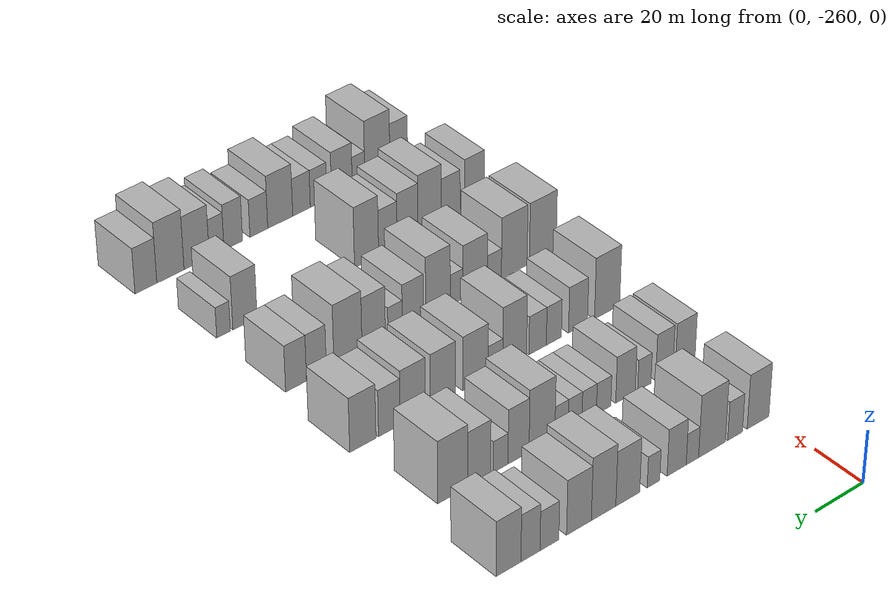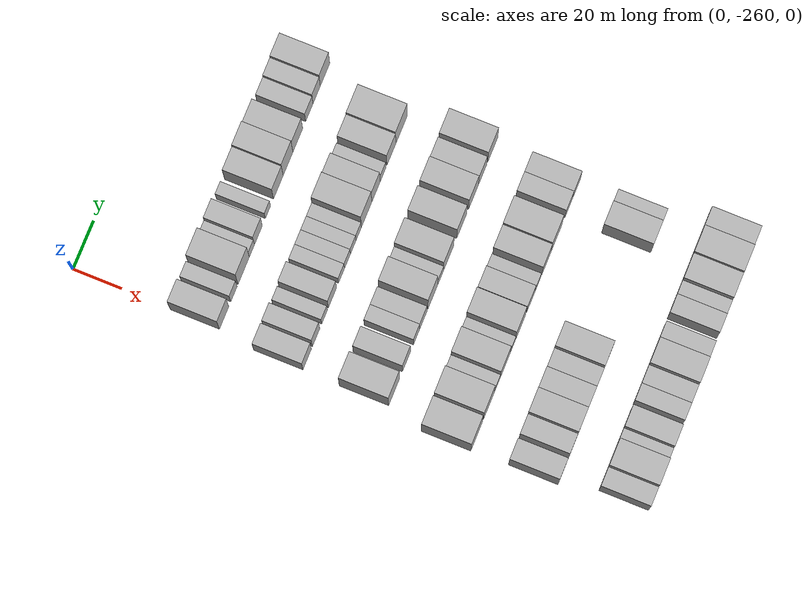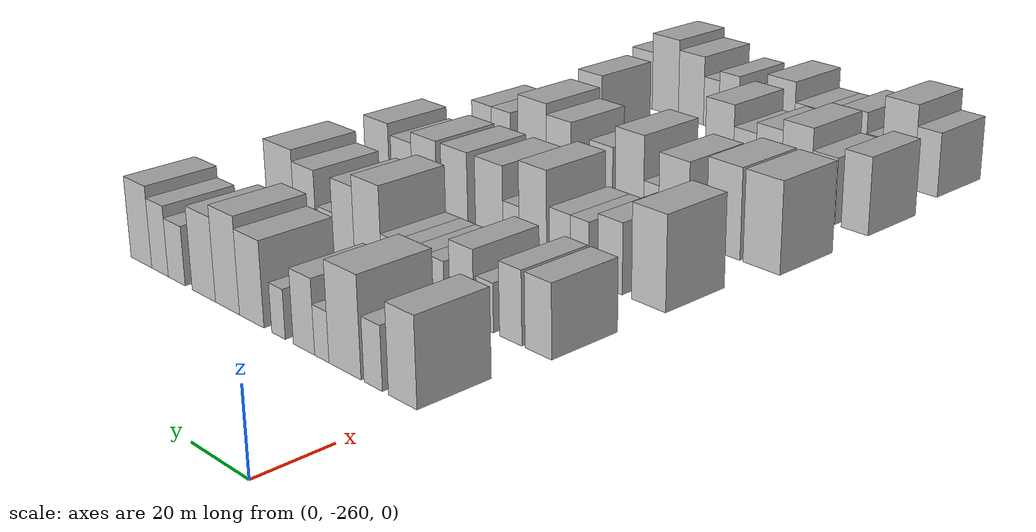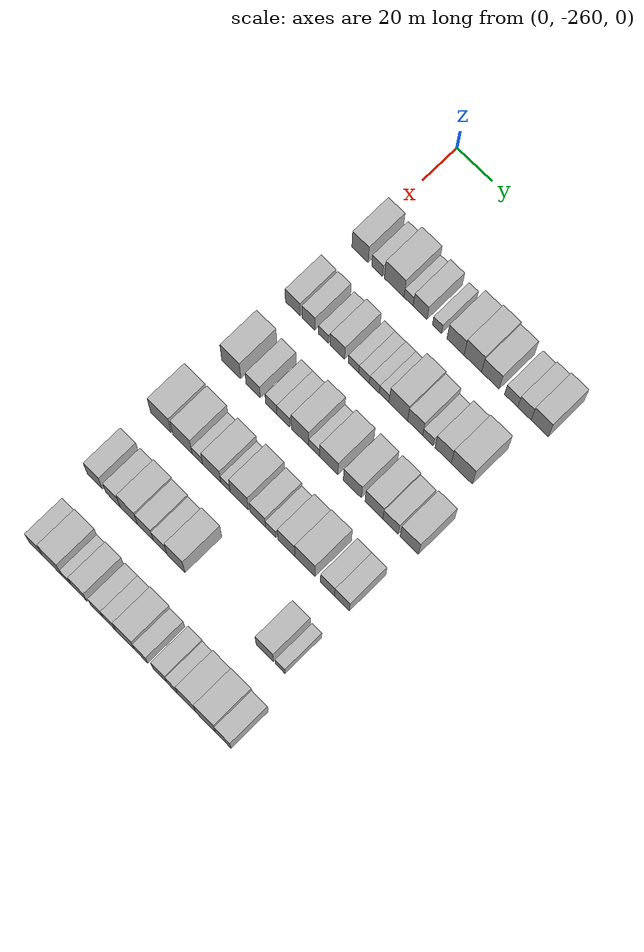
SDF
<sdf version="1.6">
 <world name="default">
  <model name="building_38">
   <static>1</static>
   <pose>50.0000 -255.7538 0 0.000000 0.000000 0.000000</pose>
   <link name="link">
    <pose>0 0 10.50 0 0 0</pose>
    <collision name="collision"><geometry><box><size>20.0000 9.2443 21.0000</size></box></geometry></collision>
    <visual name="visual">
     <cast_shadows>0</cast_shadows>
     <geometry><box><size>20.0000 9.2443 21.0000</size></box></geometry>
     <material>
      <script>
       <uri>model://HANNAS_wall/materials/scripts</uri>
       <uri>model://HANNAS_wall/materials/textures</uri>
       <name>vrc/HANNAS_wall</name>
      </script>
     </material>
    </visual>
   </link>
  </model>
  <model name="building_39">
   <static>1</static>
   <pose>50.0000 -246.0287 0 0.000000 0.000000 0.000000</pose>
   <link name="link">
    <pose>0 0 7.50 0 0 0</pose>
    <collision name="collision"><geometry><box><size>20.0000 6.2059 15.0000</size></box></geometry></collision>
    <visual name="visual">
     <cast_shadows>0</cast_shadows>
     <geometry><box><size>20.0000 6.2059 15.0000</size></box></geometry>
     <material>
      <script>
       <uri>model://HANNAS_wall/materials/scripts</uri>
       <uri>model://HANNAS_wall/materials/textures</uri>
       <name>vrc/HANNAS_wall</name>
      </script>
     </material>
    </visual>
   </link>
  </model>
  <model name="building_40">
   <static>1</static>
   <pose>50.0000 -236.3519 0 0.000000 0.000000 0.000000</pose>
   <link name="link">
    <pose>0 0 12.00 0 0 0</pose>
    <collision name="collision"><geometry><box><size>20.0000 11.1478 24.0000</size></box></geometry></collision>
    <visual name="visual">
     <cast_shadows>0</cast_shadows>
     <geometry><box><size>20.0000 11.1478 24.0000</size></box></geometry>
     <material>
      <script>
       <uri>model://HANNAS_wall/materials/scripts</uri>
       <uri>model://HANNAS_wall/materials/textures</uri>
       <name>vrc/HANNAS_wall</name>
      </script>
     </material>
    </visual>
   </link>
  </model>
  <model name="building_41">
   <static>1</static>
   <pose>50.0000 -228.2079 0 0.000000 0.000000 0.000000</pose>
   <link name="link">
    <pose>0 0 6.00 0 0 0</pose>
    <collision name="collision"><geometry><box><size>20.0000 5.1401 12.0000</size></box></geometry></collision>
    <visual name="visual">
     <cast_shadows>0</cast_shadows>
     <geometry><box><size>20.0000 5.1401 12.0000</size></box></geometry>
     <material>
      <script>
       <uri>model://HANNAS_wall/materials/scripts</uri>
       <uri>model://HANNAS_wall/materials/textures</uri>
       <name>vrc/HANNAS_wall</name>
      </script>
     </material>
    </visual>
   </link>
  </model>
  <model name="building_42">
   <static>1</static>
   <pose>50.0000 -221.7240 0 0.000000 0.000000 0.000000</pose>
   <link name="link">
    <pose>0 0 9.00 0 0 0</pose>
    <collision name="collision"><geometry><box><size>20.0000 7.8278 18.0000</size></box></geometry></collision>
    <visual name="visual">
     <cast_shadows>0</cast_shadows>
     <geometry><box><size>20.0000 7.8278 18.0000</size></box></geometry>
     <material>
      <script>
       <uri>model://HANNAS_wall/materials/scripts</uri>
       <uri>model://HANNAS_wall/materials/textures</uri>
       <name>vrc/HANNAS_wall</name>
      </script>
     </material>
    </visual>
   </link>
  </model>
  <model name="building_43">
   <static>1</static>
   <pose>50.0000 -212.2412 0 0.000000 0.000000 0.000000</pose>
   <link name="link">
    <pose>0 0 6.00 0 0 0</pose>
    <collision name="collision"><geometry><box><size>20.0000 5.1378 12.0000</size></box></geometry></collision>
    <visual name="visual">
     <cast_shadows>0</cast_shadows>
     <geometry><box><size>20.0000 5.1378 12.0000</size></box></geometry>
     <material>
      <script>
       <uri>model://HANNAS_wall/materials/scripts</uri>
       <uri>model://HANNAS_wall/materials/textures</uri>
       <name>vrc/HANNAS_wall</name>
      </script>
     </material>
    </visual>
   </link>
  </model>
  <model name="building_44">
   <static>1</static>
   <pose>50.0000 -201.8625 0 0.000000 0.000000 0.000000</pose>
   <link name="link">
    <pose>0 0 10.50 0 0 0</pose>
    <collision name="collision"><geometry><box><size>20.0000 9.6195 21.0000</size></box></geometry></collision>
    <visual name="visual">
     <cast_shadows>0</cast_shadows>
     <geometry><box><size>20.0000 9.6195 21.0000</size></box></geometry>
     <material>
      <script>
       <uri>model://HANNAS_wall/materials/scripts</uri>
       <uri>model://HANNAS_wall/materials/textures</uri>
       <name>vrc/HANNAS_wall</name>
      </script>
     </material>
    </visual>
   </link>
  </model>
  <model name="building_45">
   <static>1</static>
   <pose>50.0000 -192.1746 0 0.000000 0.000000 0.000000</pose>
   <link name="link">
    <pose>0 0 12.00 0 0 0</pose>
    <collision name="collision"><geometry><box><size>20.0000 9.7564 24.0000</size></box></geometry></collision>
    <visual name="visual">
     <cast_shadows>0</cast_shadows>
     <geometry><box><size>20.0000 9.7564 24.0000</size></box></geometry>
     <material>
      <script>
       <uri>model://HANNAS_wall/materials/scripts</uri>
       <uri>model://HANNAS_wall/materials/textures</uri>
       <name>vrc/HANNAS_wall</name>
      </script>
     </material>
    </visual>
   </link>
  </model>
  <model name="building_46">
   <static>1</static>
   <pose>50.0000 -182.3982 0 0.000000 0.000000 0.000000</pose>
   <link name="link">
    <pose>0 0 10.50 0 0 0</pose>
    <collision name="collision"><geometry><box><size>20.0000 9.7964 21.0000</size></box></geometry></collision>
    <visual name="visual">
     <cast_shadows>0</cast_shadows>
     <geometry><box><size>20.0000 9.7964 21.0000</size></box></geometry>
     <material>
      <script>
       <uri>model://HANNAS_wall/materials/scripts</uri>
       <uri>model://HANNAS_wall/materials/textures</uri>
       <name>vrc/HANNAS_wall</name>
      </script>
     </material>
    </visual>
   </link>
  </model>
  <model name="building_47">
   <static>1</static>
   <pose>50.0000 -170.8231 0 0.000000 0.000000 0.000000</pose>
   <link name="link">
    <pose>0 0 7.50 0 0 0</pose>
    <collision name="collision"><geometry><box><size>20.0000 7.3539 15.0000</size></box></geometry></collision>
    <visual name="visual">
     <cast_shadows>0</cast_shadows>
     <geometry><box><size>20.0000 7.3539 15.0000</size></box></geometry>
     <material>
      <script>
       <uri>model://HANNAS_wall/materials/scripts</uri>
       <uri>model://HANNAS_wall/materials/textures</uri>
       <name>vrc/HANNAS_wall</name>
      </script>
     </material>
    </visual>
   </link>
  </model>
  <model name="building_48">
   <static>1</static>
   <pose>50.0000 -163.4717 0 0.000000 0.000000 0.000000</pose>
   <link name="link">
    <pose>0 0 9.00 0 0 0</pose>
    <collision name="collision"><geometry><box><size>20.0000 7.3488 18.0000</size></box></geometry></collision>
    <visual name="visual">
     <cast_shadows>0</cast_shadows>
     <geometry><box><size>20.0000 7.3488 18.0000</size></box></geometry>
     <material>
      <script>
       <uri>model://HANNAS_wall/materials/scripts</uri>
       <uri>model://HANNAS_wall/materials/textures</uri>
       <name>vrc/HANNAS_wall</name>
      </script>
     </material>
    </visual>
   </link>
  </model>
  <model name="building_49">
   <static>1</static>
   <pose>50.0000 -155.0345 0 0.000000 0.000000 0.000000</pose>
   <link name="link">
    <pose>0 0 10.50 0 0 0</pose>
    <collision name="collision"><geometry><box><size>20.0000 9.5256 21.0000</size></box></geometry></collision>
    <visual name="visual">
     <cast_shadows>0</cast_shadows>
     <geometry><box><size>20.0000 9.5256 21.0000</size></box></geometry>
     <material>
      <script>
       <uri>model://HANNAS_wall/materials/scripts</uri>
       <uri>model://HANNAS_wall/materials/textures</uri>
       <name>vrc/HANNAS_wall</name>
      </script>
     </material>
    </visual>
   </link>
  </model>
  <model name="building_160">
   <static>1</static>
   <pose>85.0000 -258.6401 0 0.000000 0.000000 0.000000</pose>
   <link name="link">
    <pose>0 0 9.00 0 0 0</pose>
    <collision name="collision"><geometry><box><size>20.0000 8.4482 18.0000</size></box></geometry></collision>
    <visual name="visual">
     <cast_shadows>0</cast_shadows>
     <geometry><box><size>20.0000 8.4482 18.0000</size></box></geometry>
     <material>
      <script>
       <uri>model://HANNAS_wall/materials/scripts</uri>
       <uri>model://HANNAS_wall/materials/textures</uri>
       <name>vrc/HANNAS_wall</name>
      </script>
     </material>
    </visual>
   </link>
  </model>
  <model name="building_161">
   <static>1</static>
   <pose>85.0000 -249.7587 0 0.000000 0.000000 0.000000</pose>
   <link name="link">
    <pose>0 0 9.00 0 0 0</pose>
    <collision name="collision"><geometry><box><size>20.0000 7.3147 18.0000</size></box></geometry></collision>
    <visual name="visual">
     <cast_shadows>0</cast_shadows>
     <geometry><box><size>20.0000 7.3147 18.0000</size></box></geometry>
     <material>
      <script>
       <uri>model://HANNAS_wall/materials/scripts</uri>
       <uri>model://HANNAS_wall/materials/textures</uri>
       <name>vrc/HANNAS_wall</name>
      </script>
     </material>
    </visual>
   </link>
  </model>
  <model name="building_162">
   <static>1</static>
   <pose>85.0000 -241.3066 0 0.000000 0.000000 0.000000</pose>
   <link name="link">
    <pose>0 0 6.00 0 0 0</pose>
    <collision name="collision"><geometry><box><size>20.0000 5.5895 12.0000</size></box></geometry></collision>
    <visual name="visual">
     <cast_shadows>0</cast_shadows>
     <geometry><box><size>20.0000 5.5895 12.0000</size></box></geometry>
     <material>
      <script>
       <uri>model://HANNAS_wall/materials/scripts</uri>
       <uri>model://HANNAS_wall/materials/textures</uri>
       <name>vrc/HANNAS_wall</name>
      </script>
     </material>
    </visual>
   </link>
  </model>
  <model name="building_163">
   <static>1</static>
   <pose>85.0000 -233.4143 0 0.000000 0.000000 0.000000</pose>
   <link name="link">
    <pose>0 0 9.00 0 0 0</pose>
    <collision name="collision"><geometry><box><size>20.0000 8.1952 18.0000</size></box></geometry></collision>
    <visual name="visual">
     <cast_shadows>0</cast_shadows>
     <geometry><box><size>20.0000 8.1952 18.0000</size></box></geometry>
     <material>
      <script>
       <uri>model://HANNAS_wall/materials/scripts</uri>
       <uri>model://HANNAS_wall/materials/textures</uri>
       <name>vrc/HANNAS_wall</name>
      </script>
     </material>
    </visual>
   </link>
  </model>
  <model name="building_164">
   <static>1</static>
   <pose>85.0000 -224.3206 0 0.000000 0.000000 0.000000</pose>
   <link name="link">
    <pose>0 0 6.00 0 0 0</pose>
    <collision name="collision"><geometry><box><size>20.0000 5.9923 12.0000</size></box></geometry></collision>
    <visual name="visual">
     <cast_shadows>0</cast_shadows>
     <geometry><box><size>20.0000 5.9923 12.0000</size></box></geometry>
     <material>
      <script>
       <uri>model://HANNAS_wall/materials/scripts</uri>
       <uri>model://HANNAS_wall/materials/textures</uri>
       <name>vrc/HANNAS_wall</name>
      </script>
     </material>
    </visual>
   </link>
  </model>
  <model name="building_165">
   <static>1</static>
   <pose>85.0000 -218.3578 0 0.000000 0.000000 0.000000</pose>
   <link name="link">
    <pose>0 0 6.00 0 0 0</pose>
    <collision name="collision"><geometry><box><size>20.0000 5.9332 12.0000</size></box></geometry></collision>
    <visual name="visual">
     <cast_shadows>0</cast_shadows>
     <geometry><box><size>20.0000 5.9332 12.0000</size></box></geometry>
     <material>
      <script>
       <uri>model://HANNAS_wall/materials/scripts</uri>
       <uri>model://HANNAS_wall/materials/textures</uri>
       <name>vrc/HANNAS_wall</name>
      </script>
     </material>
    </visual>
   </link>
  </model>
  <model name="building_166">
   <static>1</static>
   <pose>85.0000 -212.5906 0 0.000000 0.000000 0.000000</pose>
   <link name="link">
    <pose>0 0 6.00 0 0 0</pose>
    <collision name="collision"><geometry><box><size>20.0000 5.6012 12.0000</size></box></geometry></collision>
    <visual name="visual">
     <cast_shadows>0</cast_shadows>
     <geometry><box><size>20.0000 5.6012 12.0000</size></box></geometry>
     <material>
      <script>
       <uri>model://HANNAS_wall/materials/scripts</uri>
       <uri>model://HANNAS_wall/materials/textures</uri>
       <name>vrc/HANNAS_wall</name>
      </script>
     </material>
    </visual>
   </link>
  </model>
  <model name="building_167">
   <static>1</static>
   <pose>85.0000 -207.0705 0 0.000000 0.000000 0.000000</pose>
   <link name="link">
    <pose>0 0 6.00 0 0 0</pose>
    <collision name="collision"><geometry><box><size>20.0000 5.4391 12.0000</size></box></geometry></collision>
    <visual name="visual">
     <cast_shadows>0</cast_shadows>
     <geometry><box><size>20.0000 5.4391 12.0000</size></box></geometry>
     <material>
      <script>
       <uri>model://HANNAS_wall/materials/scripts</uri>
       <uri>model://HANNAS_wall/materials/textures</uri>
       <name>vrc/HANNAS_wall</name>
      </script>
     </material>
    </visual>
   </link>
  </model>
  <model name="building_168">
   <static>1</static>
   <pose>85.0000 -199.1506 0 0.000000 0.000000 0.000000</pose>
   <link name="link">
    <pose>0 0 12.00 0 0 0</pose>
    <collision name="collision"><geometry><box><size>20.0000 10.4005 24.0000</size></box></geometry></collision>
    <visual name="visual">
     <cast_shadows>0</cast_shadows>
     <geometry><box><size>20.0000 10.4005 24.0000</size></box></geometry>
     <material>
      <script>
       <uri>model://HANNAS_wall/materials/scripts</uri>
       <uri>model://HANNAS_wall/materials/textures</uri>
       <name>vrc/HANNAS_wall</name>
      </script>
     </material>
    </visual>
   </link>
  </model>
  <model name="building_169">
   <static>1</static>
   <pose>85.0000 -189.7490 0 0.000000 0.000000 0.000000</pose>
   <link name="link">
    <pose>0 0 10.50 0 0 0</pose>
    <collision name="collision"><geometry><box><size>20.0000 8.4027 21.0000</size></box></geometry></collision>
    <visual name="visual">
     <cast_shadows>0</cast_shadows>
     <geometry><box><size>20.0000 8.4027 21.0000</size></box></geometry>
     <material>
      <script>
       <uri>model://HANNAS_wall/materials/scripts</uri>
       <uri>model://HANNAS_wall/materials/textures</uri>
       <name>vrc/HANNAS_wall</name>
      </script>
     </material>
    </visual>
   </link>
  </model>
  <model name="building_170">
   <static>1</static>
   <pose>85.0000 -182.6184 0 0.000000 0.000000 0.000000</pose>
   <link name="link">
    <pose>0 0 6.00 0 0 0</pose>
    <collision name="collision"><geometry><box><size>20.0000 5.8585 12.0000</size></box></geometry></collision>
    <visual name="visual">
     <cast_shadows>0</cast_shadows>
     <geometry><box><size>20.0000 5.8585 12.0000</size></box></geometry>
     <material>
      <script>
       <uri>model://HANNAS_wall/materials/scripts</uri>
       <uri>model://HANNAS_wall/materials/textures</uri>
       <name>vrc/HANNAS_wall</name>
      </script>
     </material>
    </visual>
   </link>
  </model>
  <model name="building_171">
   <static>1</static>
   <pose>85.0000 -174.1883 0 0.000000 0.000000 0.000000</pose>
   <link name="link">
    <pose>0 0 10.50 0 0 0</pose>
    <collision name="collision"><geometry><box><size>20.0000 9.0017 21.0000</size></box></geometry></collision>
    <visual name="visual">
     <cast_shadows>0</cast_shadows>
     <geometry><box><size>20.0000 9.0017 21.0000</size></box></geometry>
     <material>
      <script>
       <uri>model://HANNAS_wall/materials/scripts</uri>
       <uri>model://HANNAS_wall/materials/textures</uri>
       <name>vrc/HANNAS_wall</name>
      </script>
     </material>
    </visual>
   </link>
  </model>
  <model name="building_172">
   <static>1</static>
   <pose>85.0000 -163.8361 0 0.000000 0.000000 0.000000</pose>
   <link name="link">
    <pose>0 0 12.00 0 0 0</pose>
    <collision name="collision"><geometry><box><size>20.0000 11.7028 24.0000</size></box></geometry></collision>
    <visual name="visual">
     <cast_shadows>0</cast_shadows>
     <geometry><box><size>20.0000 11.7028 24.0000</size></box></geometry>
     <material>
      <script>
       <uri>model://HANNAS_wall/materials/scripts</uri>
       <uri>model://HANNAS_wall/materials/textures</uri>
       <name>vrc/HANNAS_wall</name>
      </script>
     </material>
    </visual>
   </link>
  </model>
  <model name="building_290">
   <static>1</static>
   <pose>120.0000 -257.9618 0 0.000000 0.000000 0.000000</pose>
   <link name="link">
    <pose>0 0 12.00 0 0 0</pose>
    <collision name="collision"><geometry><box><size>20.0000 10.8128 24.0000</size></box></geometry></collision>
    <visual name="visual">
     <cast_shadows>0</cast_shadows>
     <geometry><box><size>20.0000 10.8128 24.0000</size></box></geometry>
     <material>
      <script>
       <uri>model://HANNAS_wall/materials/scripts</uri>
       <uri>model://HANNAS_wall/materials/textures</uri>
       <name>vrc/HANNAS_wall</name>
      </script>
     </material>
    </visual>
   </link>
  </model>
  <model name="building_291">
   <static>1</static>
   <pose>120.0000 -245.5370 0 0.000000 0.000000 0.000000</pose>
   <link name="link">
    <pose>0 0 9.00 0 0 0</pose>
    <collision name="collision"><geometry><box><size>20.0000 8.0367 18.0000</size></box></geometry></collision>
    <visual name="visual">
     <cast_shadows>0</cast_shadows>
     <geometry><box><size>20.0000 8.0367 18.0000</size></box></geometry>
     <material>
      <script>
       <uri>model://HANNAS_wall/materials/scripts</uri>
       <uri>model://HANNAS_wall/materials/textures</uri>
       <name>vrc/HANNAS_wall</name>
      </script>
     </material>
    </visual>
   </link>
  </model>
  <model name="building_292">
   <static>1</static>
   <pose>120.0000 -235.3541 0 0.000000 0.000000 0.000000</pose>
   <link name="link">
    <pose>0 0 7.50 0 0 0</pose>
    <collision name="collision"><geometry><box><size>20.0000 6.3292 15.0000</size></box></geometry></collision>
    <visual name="visual">
     <cast_shadows>0</cast_shadows>
     <geometry><box><size>20.0000 6.3292 15.0000</size></box></geometry>
     <material>
      <script>
       <uri>model://HANNAS_wall/materials/scripts</uri>
       <uri>model://HANNAS_wall/materials/textures</uri>
       <name>vrc/HANNAS_wall</name>
      </script>
     </material>
    </visual>
   </link>
  </model>
  <model name="building_293">
   <static>1</static>
   <pose>120.0000 -228.5569 0 0.000000 0.000000 0.000000</pose>
   <link name="link">
    <pose>0 0 7.50 0 0 0</pose>
    <collision name="collision"><geometry><box><size>20.0000 7.2651 15.0000</size></box></geometry></collision>
    <visual name="visual">
     <cast_shadows>0</cast_shadows>
     <geometry><box><size>20.0000 7.2651 15.0000</size></box></geometry>
     <material>
      <script>
       <uri>model://HANNAS_wall/materials/scripts</uri>
       <uri>model://HANNAS_wall/materials/textures</uri>
       <name>vrc/HANNAS_wall</name>
      </script>
     </material>
    </visual>
   </link>
  </model>
  <model name="building_294">
   <static>1</static>
   <pose>120.0000 -219.0122 0 0.000000 0.000000 0.000000</pose>
   <link name="link">
    <pose>0 0 12.00 0 0 0</pose>
    <collision name="collision"><geometry><box><size>20.0000 9.8243 24.0000</size></box></geometry></collision>
    <visual name="visual">
     <cast_shadows>0</cast_shadows>
     <geometry><box><size>20.0000 9.8243 24.0000</size></box></geometry>
     <material>
      <script>
       <uri>model://HANNAS_wall/materials/scripts</uri>
       <uri>model://HANNAS_wall/materials/textures</uri>
       <name>vrc/HANNAS_wall</name>
      </script>
     </material>
    </visual>
   </link>
  </model>
  <model name="building_295">
   <static>1</static>
   <pose>120.0000 -211.1218 0 0.000000 0.000000 0.000000</pose>
   <link name="link">
    <pose>0 0 6.00 0 0 0</pose>
    <collision name="collision"><geometry><box><size>20.0000 5.9565 12.0000</size></box></geometry></collision>
    <visual name="visual">
     <cast_shadows>0</cast_shadows>
     <geometry><box><size>20.0000 5.9565 12.0000</size></box></geometry>
     <material>
      <script>
       <uri>model://HANNAS_wall/materials/scripts</uri>
       <uri>model://HANNAS_wall/materials/textures</uri>
       <name>vrc/HANNAS_wall</name>
      </script>
     </material>
    </visual>
   </link>
  </model>
  <model name="building_296">
   <static>1</static>
   <pose>120.0000 -202.9803 0 0.000000 0.000000 0.000000</pose>
   <link name="link">
    <pose>0 0 10.50 0 0 0</pose>
    <collision name="collision"><geometry><box><size>20.0000 10.3265 21.0000</size></box></geometry></collision>
    <visual name="visual">
     <cast_shadows>0</cast_shadows>
     <geometry><box><size>20.0000 10.3265 21.0000</size></box></geometry>
     <material>
      <script>
       <uri>model://HANNAS_wall/materials/scripts</uri>
       <uri>model://HANNAS_wall/materials/textures</uri>
       <name>vrc/HANNAS_wall</name>
      </script>
     </material>
    </visual>
   </link>
  </model>
  <model name="building_297">
   <static>1</static>
   <pose>120.0000 -189.7660 0 0.000000 0.000000 0.000000</pose>
   <link name="link">
    <pose>0 0 10.50 0 0 0</pose>
    <collision name="collision"><geometry><box><size>20.0000 10.1021 21.0000</size></box></geometry></collision>
    <visual name="visual">
     <cast_shadows>0</cast_shadows>
     <geometry><box><size>20.0000 10.1021 21.0000</size></box></geometry>
     <material>
      <script>
       <uri>model://HANNAS_wall/materials/scripts</uri>
       <uri>model://HANNAS_wall/materials/textures</uri>
       <name>vrc/HANNAS_wall</name>
      </script>
     </material>
    </visual>
   </link>
  </model>
  <model name="building_298">
   <static>1</static>
   <pose>120.0000 -177.7416 0 0.000000 0.000000 0.000000</pose>
   <link name="link">
    <pose>0 0 10.50 0 0 0</pose>
    <collision name="collision"><geometry><box><size>20.0000 9.9468 21.0000</size></box></geometry></collision>
    <visual name="visual">
     <cast_shadows>0</cast_shadows>
     <geometry><box><size>20.0000 9.9468 21.0000</size></box></geometry>
     <material>
      <script>
       <uri>model://HANNAS_wall/materials/scripts</uri>
       <uri>model://HANNAS_wall/materials/textures</uri>
       <name>vrc/HANNAS_wall</name>
      </script>
     </material>
    </visual>
   </link>
  </model>
  <model name="building_299">
   <static>1</static>
   <pose>120.0000 -168.5127 0 0.000000 0.000000 0.000000</pose>
   <link name="link">
    <pose>0 0 9.00 0 0 0</pose>
    <collision name="collision"><geometry><box><size>20.0000 8.5108 18.0000</size></box></geometry></collision>
    <visual name="visual">
     <cast_shadows>0</cast_shadows>
     <geometry><box><size>20.0000 8.5108 18.0000</size></box></geometry>
     <material>
      <script>
       <uri>model://HANNAS_wall/materials/scripts</uri>
       <uri>model://HANNAS_wall/materials/textures</uri>
       <name>vrc/HANNAS_wall</name>
      </script>
     </material>
    </visual>
   </link>
  </model>
  <model name="building_300">
   <static>1</static>
   <pose>120.0000 -158.1487 0 0.000000 0.000000 0.000000</pose>
   <link name="link">
    <pose>0 0 10.50 0 0 0</pose>
    <collision name="collision"><geometry><box><size>20.0000 10.2173 21.0000</size></box></geometry></collision>
    <visual name="visual">
     <cast_shadows>0</cast_shadows>
     <geometry><box><size>20.0000 10.2173 21.0000</size></box></geometry>
     <material>
      <script>
       <uri>model://HANNAS_wall/materials/scripts</uri>
       <uri>model://HANNAS_wall/materials/textures</uri>
       <name>vrc/HANNAS_wall</name>
      </script>
     </material>
    </visual>
   </link>
  </model>
  <model name="building_414">
   <static>1</static>
   <pose>155.0000 -261.9403 0 0.000000 0.000000 0.000000</pose>
   <link name="link">
    <pose>0 0 12.00 0 0 0</pose>
    <collision name="collision"><geometry><box><size>20.0000 11.5896 24.0000</size></box></geometry></collision>
    <visual name="visual">
     <cast_shadows>0</cast_shadows>
     <geometry><box><size>20.0000 11.5896 24.0000</size></box></geometry>
     <material>
      <script>
       <uri>model://HANNAS_wall/materials/scripts</uri>
       <uri>model://HANNAS_wall/materials/textures</uri>
       <name>vrc/HANNAS_wall</name>
      </script>
     </material>
    </visual>
   </link>
  </model>
  <model name="building_415">
   <static>1</static>
   <pose>155.0000 -249.6423 0 0.000000 0.000000 0.000000</pose>
   <link name="link">
    <pose>0 0 12.00 0 0 0</pose>
    <collision name="collision"><geometry><box><size>20.0000 11.0063 24.0000</size></box></geometry></collision>
    <visual name="visual">
     <cast_shadows>0</cast_shadows>
     <geometry><box><size>20.0000 11.0063 24.0000</size></box></geometry>
     <material>
      <script>
       <uri>model://HANNAS_wall/materials/scripts</uri>
       <uri>model://HANNAS_wall/materials/textures</uri>
       <name>vrc/HANNAS_wall</name>
      </script>
     </material>
    </visual>
   </link>
  </model>
  <model name="building_416">
   <static>1</static>
   <pose>155.0000 -241.1599 0 0.000000 0.000000 0.000000</pose>
   <link name="link">
    <pose>0 0 6.00 0 0 0</pose>
    <collision name="collision"><geometry><box><size>20.0000 5.9587 12.0000</size></box></geometry></collision>
    <visual name="visual">
     <cast_shadows>0</cast_shadows>
     <geometry><box><size>20.0000 5.9587 12.0000</size></box></geometry>
     <material>
      <script>
       <uri>model://HANNAS_wall/materials/scripts</uri>
       <uri>model://HANNAS_wall/materials/textures</uri>
       <name>vrc/HANNAS_wall</name>
      </script>
     </material>
    </visual>
   </link>
  </model>
  <model name="building_417">
   <static>1</static>
   <pose>155.0000 -233.0388 0 0.000000 0.000000 0.000000</pose>
   <link name="link">
    <pose>0 0 10.50 0 0 0</pose>
    <collision name="collision"><geometry><box><size>20.0000 10.2834 21.0000</size></box></geometry></collision>
    <visual name="visual">
     <cast_shadows>0</cast_shadows>
     <geometry><box><size>20.0000 10.2834 21.0000</size></box></geometry>
     <material>
      <script>
       <uri>model://HANNAS_wall/materials/scripts</uri>
       <uri>model://HANNAS_wall/materials/textures</uri>
       <name>vrc/HANNAS_wall</name>
      </script>
     </material>
    </visual>
   </link>
  </model>
  <model name="building_418">
   <static>1</static>
   <pose>155.0000 -225.2523 0 0.000000 0.000000 0.000000</pose>
   <link name="link">
    <pose>0 0 6.00 0 0 0</pose>
    <collision name="collision"><geometry><box><size>20.0000 5.2898 12.0000</size></box></geometry></collision>
    <visual name="visual">
     <cast_shadows>0</cast_shadows>
     <geometry><box><size>20.0000 5.2898 12.0000</size></box></geometry>
     <material>
      <script>
       <uri>model://HANNAS_wall/materials/scripts</uri>
       <uri>model://HANNAS_wall/materials/textures</uri>
       <name>vrc/HANNAS_wall</name>
      </script>
     </material>
    </visual>
   </link>
  </model>
  <model name="building_419">
   <static>1</static>
   <pose>155.0000 -217.5268 0 0.000000 0.000000 0.000000</pose>
   <link name="link">
    <pose>0 0 12.00 0 0 0</pose>
    <collision name="collision"><geometry><box><size>20.0000 10.1612 24.0000</size></box></geometry></collision>
    <visual name="visual">
     <cast_shadows>0</cast_shadows>
     <geometry><box><size>20.0000 10.1612 24.0000</size></box></geometry>
     <material>
      <script>
       <uri>model://HANNAS_wall/materials/scripts</uri>
       <uri>model://HANNAS_wall/materials/textures</uri>
       <name>vrc/HANNAS_wall</name>
      </script>
     </material>
    </visual>
   </link>
  </model>
  <model name="building_420">
   <static>1</static>
   <pose>155.0000 -207.1357 0 0.000000 0.000000 0.000000</pose>
   <link name="link">
    <pose>0 0 9.00 0 0 0</pose>
    <collision name="collision"><geometry><box><size>20.0000 8.6210 18.0000</size></box></geometry></collision>
    <visual name="visual">
     <cast_shadows>0</cast_shadows>
     <geometry><box><size>20.0000 8.6210 18.0000</size></box></geometry>
     <material>
      <script>
       <uri>model://HANNAS_wall/materials/scripts</uri>
       <uri>model://HANNAS_wall/materials/textures</uri>
       <name>vrc/HANNAS_wall</name>
      </script>
     </material>
    </visual>
   </link>
  </model>
  <model name="building_421">
   <static>1</static>
   <pose>155.0000 -199.8843 0 0.000000 0.000000 0.000000</pose>
   <link name="link">
    <pose>0 0 6.00 0 0 0</pose>
    <collision name="collision"><geometry><box><size>20.0000 5.8816 12.0000</size></box></geometry></collision>
    <visual name="visual">
     <cast_shadows>0</cast_shadows>
     <geometry><box><size>20.0000 5.8816 12.0000</size></box></geometry>
     <material>
      <script>
       <uri>model://HANNAS_wall/materials/scripts</uri>
       <uri>model://HANNAS_wall/materials/textures</uri>
       <name>vrc/HANNAS_wall</name>
      </script>
     </material>
    </visual>
   </link>
  </model>
  <model name="building_422">
   <static>1</static>
   <pose>155.0000 -191.2168 0 0.000000 0.000000 0.000000</pose>
   <link name="link">
    <pose>0 0 10.50 0 0 0</pose>
    <collision name="collision"><geometry><box><size>20.0000 9.4535 21.0000</size></box></geometry></collision>
    <visual name="visual">
     <cast_shadows>0</cast_shadows>
     <geometry><box><size>20.0000 9.4535 21.0000</size></box></geometry>
     <material>
      <script>
       <uri>model://HANNAS_wall/materials/scripts</uri>
       <uri>model://HANNAS_wall/materials/textures</uri>
       <name>vrc/HANNAS_wall</name>
      </script>
     </material>
    </visual>
   </link>
  </model>
  <model name="building_423">
   <static>1</static>
   <pose>155.0000 -180.8516 0 0.000000 0.000000 0.000000</pose>
   <link name="link">
    <pose>0 0 12.00 0 0 0</pose>
    <collision name="collision"><geometry><box><size>20.0000 11.2770 24.0000</size></box></geometry></collision>
    <visual name="visual">
     <cast_shadows>0</cast_shadows>
     <geometry><box><size>20.0000 11.2770 24.0000</size></box></geometry>
     <material>
      <script>
       <uri>model://HANNAS_wall/materials/scripts</uri>
       <uri>model://HANNAS_wall/materials/textures</uri>
       <name>vrc/HANNAS_wall</name>
      </script>
     </material>
    </visual>
   </link>
  </model>
  <model name="building_424">
   <static>1</static>
   <pose>155.0000 -168.2864 0 0.000000 0.000000 0.000000</pose>
   <link name="link">
    <pose>0 0 9.00 0 0 0</pose>
    <collision name="collision"><geometry><box><size>20.0000 7.8534 18.0000</size></box></geometry></collision>
    <visual name="visual">
     <cast_shadows>0</cast_shadows>
     <geometry><box><size>20.0000 7.8534 18.0000</size></box></geometry>
     <material>
      <script>
       <uri>model://HANNAS_wall/materials/scripts</uri>
       <uri>model://HANNAS_wall/materials/textures</uri>
       <name>vrc/HANNAS_wall</name>
      </script>
     </material>
    </visual>
   </link>
  </model>
  <model name="building_425">
   <static>1</static>
   <pose>155.0000 -160.2643 0 0.000000 0.000000 0.000000</pose>
   <link name="link">
    <pose>0 0 9.00 0 0 0</pose>
    <collision name="collision"><geometry><box><size>20.0000 8.1907 18.0000</size></box></geometry></collision>
    <visual name="visual">
     <cast_shadows>0</cast_shadows>
     <geometry><box><size>20.0000 8.1907 18.0000</size></box></geometry>
     <material>
      <script>
       <uri>model://HANNAS_wall/materials/scripts</uri>
       <uri>model://HANNAS_wall/materials/textures</uri>
       <name>vrc/HANNAS_wall</name>
      </script>
     </material>
    </visual>
   </link>
  </model>
  <model name="building_546">
   <static>1</static>
   <pose>190.0000 -262.9827 0 0.000000 0.000000 0.000000</pose>
   <link name="link">
    <pose>0 0 10.50 0 0 0</pose>
    <collision name="collision"><geometry><box><size>20.0000 8.5282 21.0000</size></box></geometry></collision>
    <visual name="visual">
     <cast_shadows>0</cast_shadows>
     <geometry><box><size>20.0000 8.5282 21.0000</size></box></geometry>
     <material>
      <script>
       <uri>model://HANNAS_wall/materials/scripts</uri>
       <uri>model://HANNAS_wall/materials/textures</uri>
       <name>vrc/HANNAS_wall</name>
      </script>
     </material>
    </visual>
   </link>
  </model>
  <model name="building_547">
   <static>1</static>
   <pose>190.0000 -252.6480 0 0.000000 0.000000 0.000000</pose>
   <link name="link">
    <pose>0 0 9.00 0 0 0</pose>
    <collision name="collision"><geometry><box><size>20.0000 8.1412 18.0000</size></box></geometry></collision>
    <visual name="visual">
     <cast_shadows>0</cast_shadows>
     <geometry><box><size>20.0000 8.1412 18.0000</size></box></geometry>
     <material>
      <script>
       <uri>model://HANNAS_wall/materials/scripts</uri>
       <uri>model://HANNAS_wall/materials/textures</uri>
       <name>vrc/HANNAS_wall</name>
      </script>
     </material>
    </visual>
   </link>
  </model>
  <model name="building_548">
   <static>1</static>
   <pose>190.0000 -243.6127 0 0.000000 0.000000 0.000000</pose>
   <link name="link">
    <pose>0 0 12.00 0 0 0</pose>
    <collision name="collision"><geometry><box><size>20.0000 9.9295 24.0000</size></box></geometry></collision>
    <visual name="visual">
     <cast_shadows>0</cast_shadows>
     <geometry><box><size>20.0000 9.9295 24.0000</size></box></geometry>
     <material>
      <script>
       <uri>model://HANNAS_wall/materials/scripts</uri>
       <uri>model://HANNAS_wall/materials/textures</uri>
       <name>vrc/HANNAS_wall</name>
      </script>
     </material>
    </visual>
   </link>
  </model>
  <model name="building_549">
   <static>1</static>
   <pose>190.0000 -234.2569 0 0.000000 0.000000 0.000000</pose>
   <link name="link">
    <pose>0 0 10.50 0 0 0</pose>
    <collision name="collision"><geometry><box><size>20.0000 8.7820 21.0000</size></box></geometry></collision>
    <visual name="visual">
     <cast_shadows>0</cast_shadows>
     <geometry><box><size>20.0000 8.7820 21.0000</size></box></geometry>
     <material>
      <script>
       <uri>model://HANNAS_wall/materials/scripts</uri>
       <uri>model://HANNAS_wall/materials/textures</uri>
       <name>vrc/HANNAS_wall</name>
      </script>
     </material>
    </visual>
   </link>
  </model>
  <model name="building_550">
   <static>1</static>
   <pose>190.0000 -225.9483 0 0.000000 0.000000 0.000000</pose>
   <link name="link">
    <pose>0 0 9.00 0 0 0</pose>
    <collision name="collision"><geometry><box><size>20.0000 7.8352 18.0000</size></box></geometry></collision>
    <visual name="visual">
     <cast_shadows>0</cast_shadows>
     <geometry><box><size>20.0000 7.8352 18.0000</size></box></geometry>
     <material>
      <script>
       <uri>model://HANNAS_wall/materials/scripts</uri>
       <uri>model://HANNAS_wall/materials/textures</uri>
       <name>vrc/HANNAS_wall</name>
      </script>
     </material>
    </visual>
   </link>
  </model>
  <model name="building_551">
   <static>1</static>
   <pose>190.0000 -217.0057 0 0.000000 0.000000 0.000000</pose>
   <link name="link">
    <pose>0 0 12.00 0 0 0</pose>
    <collision name="collision"><geometry><box><size>20.0000 10.0501 24.0000</size></box></geometry></collision>
    <visual name="visual">
     <cast_shadows>0</cast_shadows>
     <geometry><box><size>20.0000 10.0501 24.0000</size></box></geometry>
     <material>
      <script>
       <uri>model://HANNAS_wall/materials/scripts</uri>
       <uri>model://HANNAS_wall/materials/textures</uri>
       <name>vrc/HANNAS_wall</name>
      </script>
     </material>
    </visual>
   </link>
  </model>
  <model name="building_552">
   <static>1</static>
   <pose>190.0000 -167.4910 0 0.000000 0.000000 0.000000</pose>
   <link name="link">
    <pose>0 0 10.50 0 0 0</pose>
    <collision name="collision"><geometry><box><size>20.0000 9.6597 21.0000</size></box></geometry></collision>
    <visual name="visual">
     <cast_shadows>0</cast_shadows>
     <geometry><box><size>20.0000 9.6597 21.0000</size></box></geometry>
     <material>
      <script>
       <uri>model://HANNAS_wall/materials/scripts</uri>
       <uri>model://HANNAS_wall/materials/textures</uri>
       <name>vrc/HANNAS_wall</name>
      </script>
     </material>
    </visual>
   </link>
  </model>
  <model name="building_553">
   <static>1</static>
   <pose>190.0000 -158.9826 0 0.000000 0.000000 0.000000</pose>
   <link name="link">
    <pose>0 0 6.00 0 0 0</pose>
    <collision name="collision"><geometry><box><size>20.0000 5.3572 12.0000</size></box></geometry></collision>
    <visual name="visual">
     <cast_shadows>0</cast_shadows>
     <geometry><box><size>20.0000 5.3572 12.0000</size></box></geometry>
     <material>
      <script>
       <uri>model://HANNAS_wall/materials/scripts</uri>
       <uri>model://HANNAS_wall/materials/textures</uri>
       <name>vrc/HANNAS_wall</name>
      </script>
     </material>
    </visual>
   </link>
  </model>
  <model name="building_670">
   <static>1</static>
   <pose>225.0000 -259.6767 0 0.000000 0.000000 0.000000</pose>
   <link name="link">
    <pose>0 0 9.00 0 0 0</pose>
    <collision name="collision"><geometry><box><size>20.0000 7.7153 18.0000</size></box></geometry></collision>
    <visual name="visual">
     <cast_shadows>0</cast_shadows>
     <geometry><box><size>20.0000 7.7153 18.0000</size></box></geometry>
     <material>
      <script>
       <uri>model://HANNAS_wall/materials/scripts</uri>
       <uri>model://HANNAS_wall/materials/textures</uri>
       <name>vrc/HANNAS_wall</name>
      </script>
     </material>
    </visual>
   </link>
  </model>
  <model name="building_671">
   <static>1</static>
   <pose>225.0000 -250.3712 0 0.000000 0.000000 0.000000</pose>
   <link name="link">
    <pose>0 0 12.00 0 0 0</pose>
    <collision name="collision"><geometry><box><size>20.0000 10.8956 24.0000</size></box></geometry></collision>
    <visual name="visual">
     <cast_shadows>0</cast_shadows>
     <geometry><box><size>20.0000 10.8956 24.0000</size></box></geometry>
     <material>
      <script>
       <uri>model://HANNAS_wall/materials/scripts</uri>
       <uri>model://HANNAS_wall/materials/textures</uri>
       <name>vrc/HANNAS_wall</name>
      </script>
     </material>
    </visual>
   </link>
  </model>
  <model name="building_672">
   <static>1</static>
   <pose>225.0000 -242.2188 0 0.000000 0.000000 0.000000</pose>
   <link name="link">
    <pose>0 0 6.00 0 0 0</pose>
    <collision name="collision"><geometry><box><size>20.0000 5.4092 12.0000</size></box></geometry></collision>
    <visual name="visual">
     <cast_shadows>0</cast_shadows>
     <geometry><box><size>20.0000 5.4092 12.0000</size></box></geometry>
     <material>
      <script>
       <uri>model://HANNAS_wall/materials/scripts</uri>
       <uri>model://HANNAS_wall/materials/textures</uri>
       <name>vrc/HANNAS_wall</name>
      </script>
     </material>
    </visual>
   </link>
  </model>
  <model name="building_673">
   <static>1</static>
   <pose>225.0000 -235.1037 0 0.000000 0.000000 0.000000</pose>
   <link name="link">
    <pose>0 0 9.00 0 0 0</pose>
    <collision name="collision"><geometry><box><size>20.0000 8.8210 18.0000</size></box></geometry></collision>
    <visual name="visual">
     <cast_shadows>0</cast_shadows>
     <geometry><box><size>20.0000 8.8210 18.0000</size></box></geometry>
     <material>
      <script>
       <uri>model://HANNAS_wall/materials/scripts</uri>
       <uri>model://HANNAS_wall/materials/textures</uri>
       <name>vrc/HANNAS_wall</name>
      </script>
     </material>
    </visual>
   </link>
  </model>
  <model name="building_674">
   <static>1</static>
   <pose>225.0000 -225.1955 0 0.000000 0.000000 0.000000</pose>
   <link name="link">
    <pose>0 0 7.50 0 0 0</pose>
    <collision name="collision"><geometry><box><size>20.0000 6.9954 15.0000</size></box></geometry></collision>
    <visual name="visual">
     <cast_shadows>0</cast_shadows>
     <geometry><box><size>20.0000 6.9954 15.0000</size></box></geometry>
     <material>
      <script>
       <uri>model://HANNAS_wall/materials/scripts</uri>
       <uri>model://HANNAS_wall/materials/textures</uri>
       <name>vrc/HANNAS_wall</name>
      </script>
     </material>
    </visual>
   </link>
  </model>
  <model name="building_675">
   <static>1</static>
   <pose>225.0000 -218.0012 0 0.000000 0.000000 0.000000</pose>
   <link name="link">
    <pose>0 0 7.50 0 0 0</pose>
    <collision name="collision"><geometry><box><size>20.0000 7.3932 15.0000</size></box></geometry></collision>
    <visual name="visual">
     <cast_shadows>0</cast_shadows>
     <geometry><box><size>20.0000 7.3932 15.0000</size></box></geometry>
     <material>
      <script>
       <uri>model://HANNAS_wall/materials/scripts</uri>
       <uri>model://HANNAS_wall/materials/textures</uri>
       <name>vrc/HANNAS_wall</name>
      </script>
     </material>
    </visual>
   </link>
  </model>
  <model name="building_676">
   <static>1</static>
   <pose>225.0000 -209.1044 0 0.000000 0.000000 0.000000</pose>
   <link name="link">
    <pose>0 0 10.50 0 0 0</pose>
    <collision name="collision"><geometry><box><size>20.0000 10.4003 21.0000</size></box></geometry></collision>
    <visual name="visual">
     <cast_shadows>0</cast_shadows>
     <geometry><box><size>20.0000 10.4003 21.0000</size></box></geometry>
     <material>
      <script>
       <uri>model://HANNAS_wall/materials/scripts</uri>
       <uri>model://HANNAS_wall/materials/textures</uri>
       <name>vrc/HANNAS_wall</name>
      </script>
     </material>
    </visual>
   </link>
  </model>
  <model name="building_677">
   <static>1</static>
   <pose>225.0000 -200.2298 0 0.000000 0.000000 0.000000</pose>
   <link name="link">
    <pose>0 0 7.50 0 0 0</pose>
    <collision name="collision"><geometry><box><size>20.0000 7.3490 15.0000</size></box></geometry></collision>
    <visual name="visual">
     <cast_shadows>0</cast_shadows>
     <geometry><box><size>20.0000 7.3490 15.0000</size></box></geometry>
     <material>
      <script>
       <uri>model://HANNAS_wall/materials/scripts</uri>
       <uri>model://HANNAS_wall/materials/textures</uri>
       <name>vrc/HANNAS_wall</name>
      </script>
     </material>
    </visual>
   </link>
  </model>
  <model name="building_678">
   <static>1</static>
   <pose>225.0000 -189.7547 0 0.000000 0.000000 0.000000</pose>
   <link name="link">
    <pose>0 0 9.00 0 0 0</pose>
    <collision name="collision"><geometry><box><size>20.0000 7.6012 18.0000</size></box></geometry></collision>
    <visual name="visual">
     <cast_shadows>0</cast_shadows>
     <geometry><box><size>20.0000 7.6012 18.0000</size></box></geometry>
     <material>
      <script>
       <uri>model://HANNAS_wall/materials/scripts</uri>
       <uri>model://HANNAS_wall/materials/textures</uri>
       <name>vrc/HANNAS_wall</name>
      </script>
     </material>
    </visual>
   </link>
  </model>
  <model name="building_679">
   <static>1</static>
   <pose>225.0000 -182.9500 0 0.000000 0.000000 0.000000</pose>
   <link name="link">
    <pose>0 0 7.50 0 0 0</pose>
    <collision name="collision"><geometry><box><size>20.0000 6.0082 15.0000</size></box></geometry></collision>
    <visual name="visual">
     <cast_shadows>0</cast_shadows>
     <geometry><box><size>20.0000 6.0082 15.0000</size></box></geometry>
     <material>
      <script>
       <uri>model://HANNAS_wall/materials/scripts</uri>
       <uri>model://HANNAS_wall/materials/textures</uri>
       <name>vrc/HANNAS_wall</name>
      </script>
     </material>
    </visual>
   </link>
  </model>
  <model name="building_680">
   <static>1</static>
   <pose>225.0000 -174.8705 0 0.000000 0.000000 0.000000</pose>
   <link name="link">
    <pose>0 0 10.50 0 0 0</pose>
    <collision name="collision"><geometry><box><size>20.0000 10.1509 21.0000</size></box></geometry></collision>
    <visual name="visual">
     <cast_shadows>0</cast_shadows>
     <geometry><box><size>20.0000 10.1509 21.0000</size></box></geometry>
     <material>
      <script>
       <uri>model://HANNAS_wall/materials/scripts</uri>
       <uri>model://HANNAS_wall/materials/textures</uri>
       <name>vrc/HANNAS_wall</name>
      </script>
     </material>
    </visual>
   </link>
  </model>
  <model name="building_681">
   <static>1</static>
   <pose>225.0000 -164.3593 0 0.000000 0.000000 0.000000</pose>
   <link name="link">
    <pose>0 0 12.00 0 0 0</pose>
    <collision name="collision"><geometry><box><size>20.0000 10.8713 24.0000</size></box></geometry></collision>
    <visual name="visual">
     <cast_shadows>0</cast_shadows>
     <geometry><box><size>20.0000 10.8713 24.0000</size></box></geometry>
     <material>
      <script>
       <uri>model://HANNAS_wall/materials/scripts</uri>
       <uri>model://HANNAS_wall/materials/textures</uri>
       <name>vrc/HANNAS_wall</name>
      </script>
     </material>
    </visual>
   </link>
  </model>
  <model name="building_682">
   <static>1</static>
   <pose>225.0000 -154.6090 0 0.000000 0.000000 0.000000</pose>
   <link name="link">
    <pose>0 0 9.00 0 0 0</pose>
    <collision name="collision"><geometry><box><size>20.0000 8.6293 18.0000</size></box></geometry></collision>
    <visual name="visual">
     <cast_shadows>0</cast_shadows>
     <geometry><box><size>20.0000 8.6293 18.0000</size></box></geometry>
     <material>
      <script>
       <uri>model://HANNAS_wall/materials/scripts</uri>
       <uri>model://HANNAS_wall/materials/textures</uri>
       <name>vrc/HANNAS_wall</name>
      </script>
     </material>
    </visual>
   </link>
  </model>
 </world>
</sdf>
